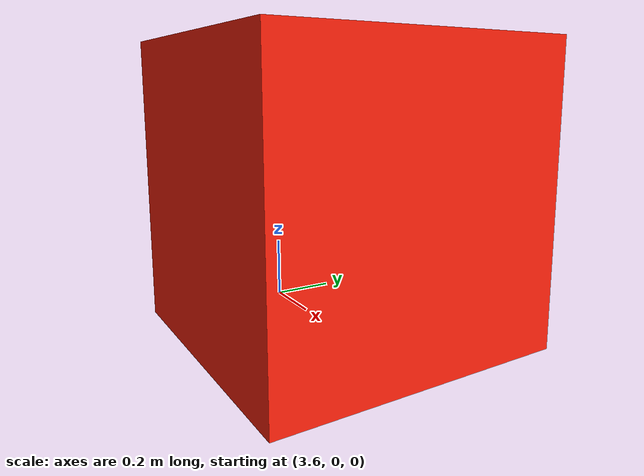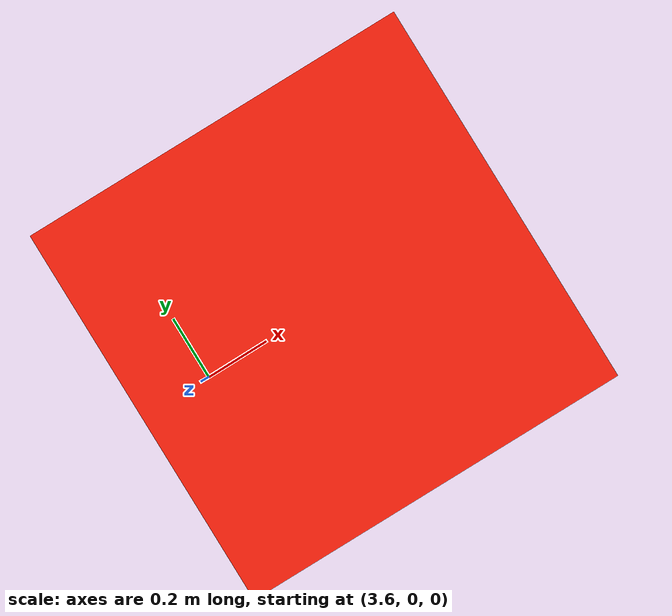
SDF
<?xml version="1.0"?>
<sdf version="1.9">
  <model name="dynamic_box">
    <!-- Spawned at runtime to model a dynamic appearance, but fixed in place
         so the robot cannot pass the stop gate by physically pushing it. -->
    <static>true</static>
    <pose>4.0 0.0 0.45 0 0 0</pose>
    <link name="link">
      <inertial><mass>8.0</mass><inertia><ixx>1.08</ixx><iyy>1.08</iyy><izz>1.08</izz><ixy>0</ixy><ixz>0</ixz><iyz>0</iyz></inertia></inertial>
      <collision name="collision"><geometry><box><size>0.9 0.9 0.9</size></box></geometry></collision>
      <visual name="visual"><geometry><box><size>0.9 0.9 0.9</size></box></geometry><material><ambient>0.95 0.12 0.04 1</ambient><diffuse>0.95 0.12 0.04 1</diffuse><specular>0.30 0.08 0.02 1</specular></material></visual>
    </link>
  </model>
</sdf>
